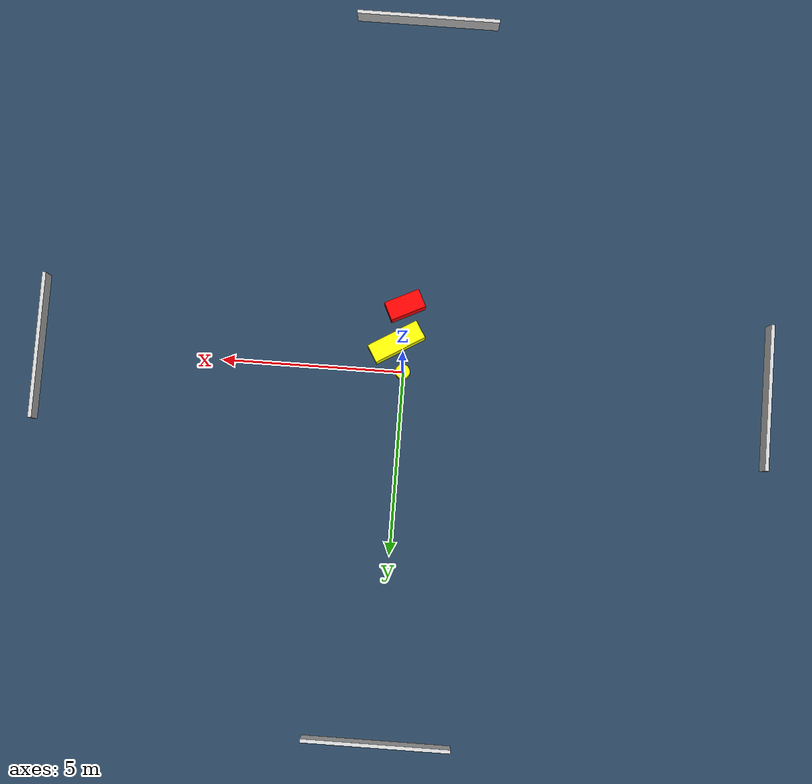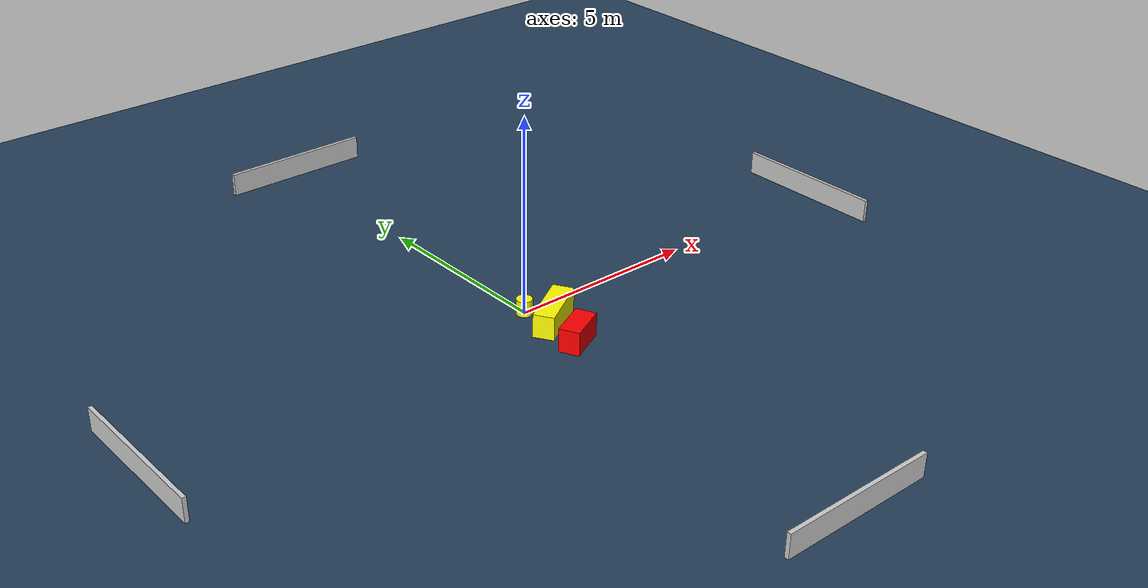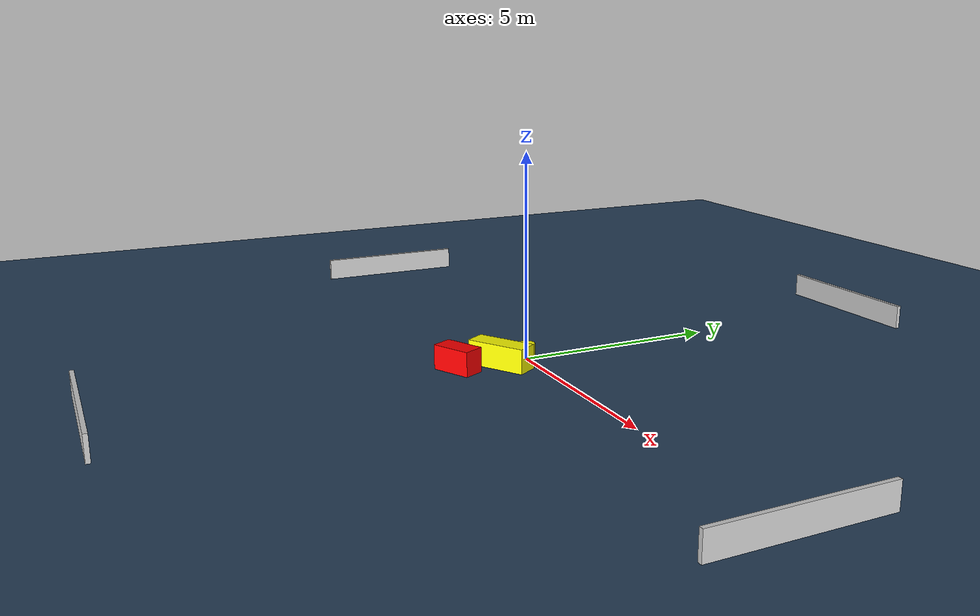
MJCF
<?xml version="1.0" ?>
<mujoco model="generated_environment">
  <option timestep="0.01" integrator="RK4" cone="elliptic"/>
  <default>
    <geom density="1"/>
  </default>
  <asset>
    <texture builtin="gradient" height="3072" name="skybox" rgb1="0.3 0.5 0.7" rgb2="0 0 0" type="skybox" width="512"/>
    <texture builtin="checker" height="300" name="groundplane" rgb1="0.2 0.3 0.4" rgb2="0.1 0.2 0.3" type="2d" width="300"/>
    <material name="groundplane" reflectance="0.2" texrepeat="5 5" texture="groundplane"/>
  </asset>
  <worldbody>
    <light dir="0 0 -1" directional="true" pos="0 0 1.5"/>
    <geom condim="3" friction="0.5 0.005 0.001" material="groundplane" name="floor" pos="0 0 0" size="0 0 0.05" type="plane"/>
    <body name="walls">
      <geom name="wall_1" condim="4" pos="-10.0 0.0 0.3" rgba="0.800000011920929 0.800000011920929 0.800000011920929 1.0" size="0.05 2.0 0.3" type="box"/>
      <geom name="wall_2" condim="4" pos="10.0 0.0 0.3" rgba="0.800000011920929 0.800000011920929 0.800000011920929 1.0" size="0.05 2.0 0.3" type="box"/>
      <geom name="wall_3" condim="4" pos="0.0 -10.0 0.3" rgba="0.800000011920929 0.800000011920929 0.800000011920929 1.0" size="2.0 0.05 0.3" type="box"/>
      <geom name="wall_4" condim="4" pos="0.0 10.0 0.3" rgba="0.800000011920929 0.800000011920929 0.800000011920929 1.0" size="2.0 0.05 0.3" type="box"/>
    </body>
    <body name="robot">
      <joint name="joint_x" type="slide" pos="0 0 0" axis="1 0 0"/>
      <joint name="joint_y" type="slide" pos="0 0 0" axis="0 1 0"/>
      <geom name="robot" type="cylinder" pos="0.0 0.0 0.2" size="0.2 0.2 0.0" mass="5.0" friction="1.0 0.005 0.0001" condim="4" rgba="1.0 1.0 0.0 1.0"/>
    </body>
    <body name="obstacle_1_movable">
      <geom name="obstacle_1_movable" condim="4" pos="0.23050685560574827 -0.7901213250190886 0.3" euler="0 0 211.46252889342543" friction="0.0 0.005 0.001" rgba="1.0 1.0 0.0 1.0" size="0.7486040856194269 0.26076534480361657 0.3" type="box" mass="0.1"/>
      <joint type="free"/>
    </body>
    <body name="obstacle_2_static">
      <geom name="obstacle_2_static" condim="4" pos="0.06453804405554306 -1.8208177350624128 0.3" euler="0 0 116.0341996738878" friction="0.0 0.005 0.001" rgba="1.0 0.0 0.0 1.0" size="0.2595895000569691 0.504518454747197 0.3" type="box"/>
    </body>
  </worldbody>
  <actuator>
    <motor name="actuator_x" joint="joint_x" gear="1" ctrlrange="-1 1"/>
    <motor name="actuator_y" joint="joint_y" gear="1" ctrlrange="-1 1"/>
  </actuator>
</mujoco>
